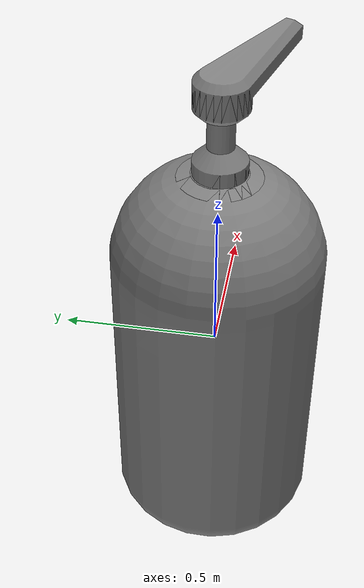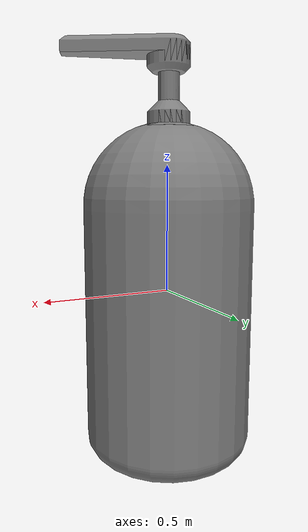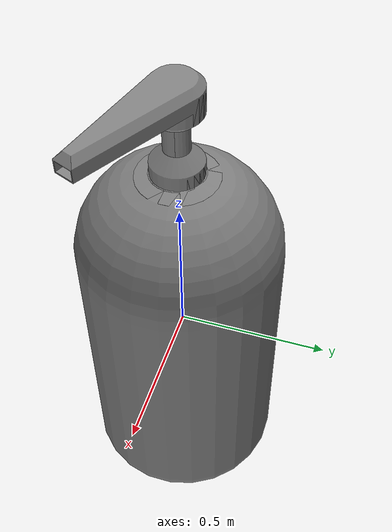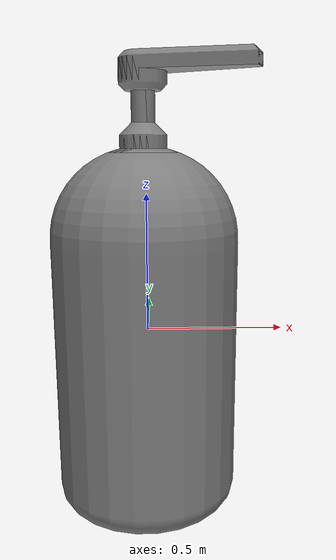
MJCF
<?xml version='1.0' encoding='UTF-8'?>
<mujoco model="partnet_5ca994bd512be485db3bac7ad77ae88e">
  <compiler angle="radian"/>
  <asset>
    <mesh name="new_0" content_type="model/obj" file="textured_objs/new_0.obj"/>
    <mesh name="new_1" content_type="model/obj" file="textured_objs/new_1.obj"/>
    <mesh name="original_3" content_type="model/obj" file="textured_objs/original_3.obj"/>
    <mesh name="original_4" content_type="model/obj" file="textured_objs/original_4.obj"/>
    <mesh name="new_5" content_type="model/obj" file="textured_objs/new_5.obj"/>
    <mesh name="new_4" content_type="model/obj" file="textured_objs/new_4.obj"/>
    <mesh name="new_2" content_type="model/obj" file="textured_objs/new_2.obj"/>
  </asset>
  <worldbody>
    <body name="base">
      <body name="link_1" quat="0.5 0.5 -0.5 -0.5">
        <geom type="mesh" mesh="new_5"/>
        <geom type="mesh" mesh="new_4"/>
        <geom type="mesh" mesh="new_2"/>
        <body name="link_0_helper" pos="0.00406971 0 0.00745147">
          <inertial pos="0 0 0" mass="1e-06" diaginertia="1e-10 1e-10 1e-10"/>
          <joint name="joint_2" pos="0 0 0" axis="0 -1 0" type="slide" range="0 0.084"/>
          <body name="link_0">
            <joint name="joint_0" pos="0 0 0" axis="0 1 0"/>
            <geom pos="-0.00406971 0 -0.00745147" quat="1 0 0 0" type="mesh" mesh="new_0"/>
            <geom pos="-0.00406971 0 -0.00745147" quat="1 0 0 0" type="mesh" mesh="new_1"/>
            <geom pos="-0.00406971 0 -0.00745147" quat="1 0 0 0" type="mesh" mesh="original_3"/>
            <geom pos="-0.00406971 0 -0.00745147" quat="1 0 0 0" type="mesh" mesh="original_4"/>
          </body>
        </body>
      </body>
    </body>
  </worldbody>
</mujoco>
